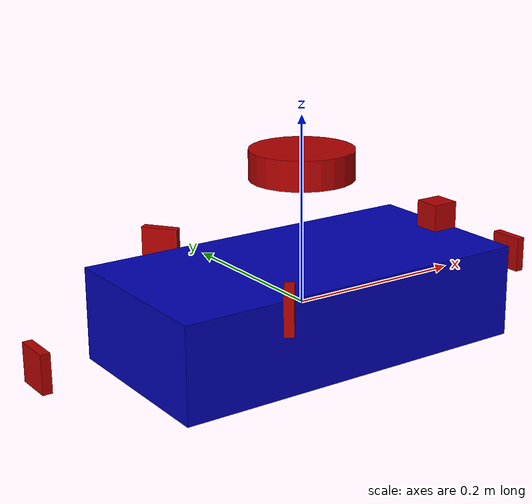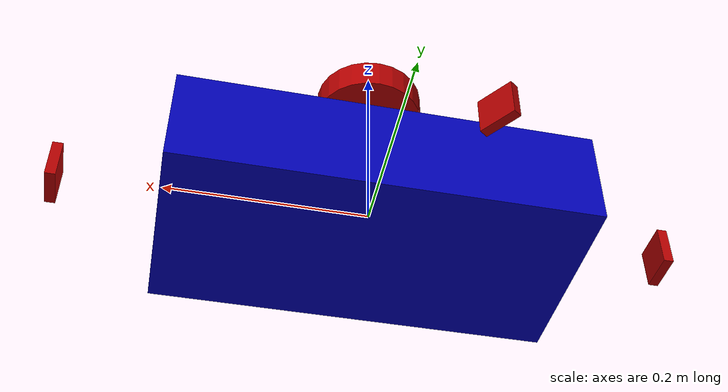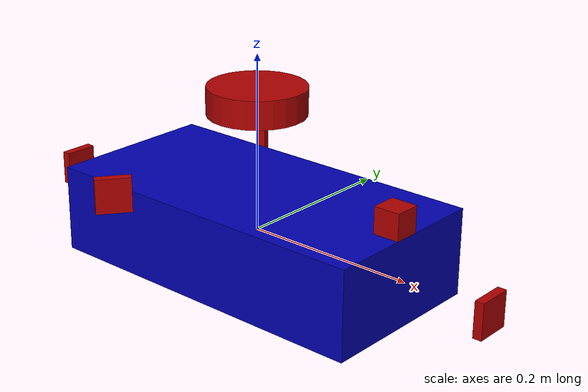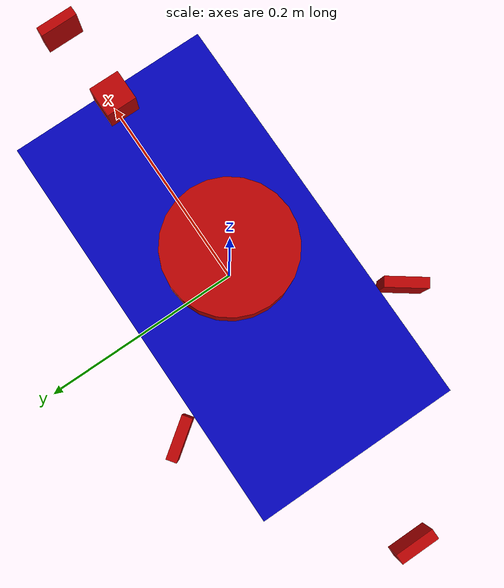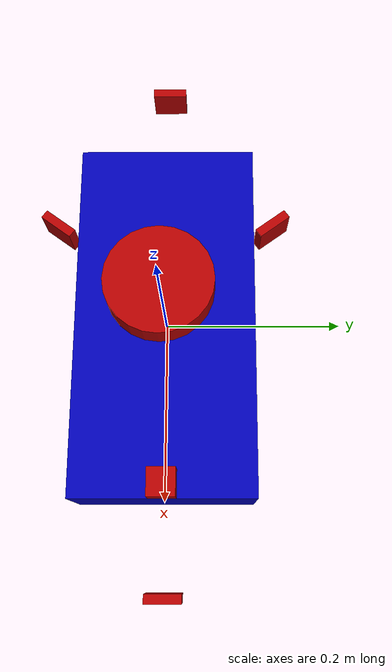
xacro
<?xml version="1.0"?>

<robot xmlns:xacro="http://ros.org/wiki/xacro">

  <xacro:property name="M_PI" value="3.14159" />
  <xacro:property name="lidar_height_from_pod" value="0.15" />
  <xacro:property name="pod_x" value="0.4"/>
  <xacro:property name="pod_y" value="0.2"/>
  <xacro:property name="pod_z" value="0.1"/>
  <xacro:include filename="lib.xacro" />
  <material name="blue">
    <color rgba="0 0 .7 1" />
  </material>
  <material name="red">
    <color rgba="0.7 0 0 1" />
  </material>

  <link name="pod">
    <visual>
      <origin xyz="0 0 0.0" rpy="0 0 0" />
      <geometry>
        <box size="${pod_x} ${pod_y} ${pod_z}" />
      </geometry>
      <material name="blue" />
    </visual>
    <collision>
      <geometry>
        <box size="${pod_x} ${pod_y} ${pod_z}" />
      </geometry>
    </collision>

    <inertial>
      <mass value="0.1" />
      <origin xyz="0 0 0" />
      <inertia ixx="0.001" ixy="0.0" ixz="0.0" iyy="0.001" iyz="0.0" izz="0.001" />
    </inertial>
  </link>

  <!--_LIDAR -->
  <link name="laser">
    <visual>
      <origin xyz="0 0 0.0" rpy="0 0 0" />
      <geometry>
        <cylinder length="0.0315" radius="0.055" />
      </geometry>
      <material name="red"/>
    </visual>

    <collision>
      <origin xyz="0.015 0 -0.0065" rpy="0 0 0" />
      <geometry>
        <cylinder length="0.0315" radius="0.055" />
      </geometry>
    </collision>

    <inertial>
      <mass value="0.114" />
      <origin xyz="0 0 0" />
      <inertia ixx="0.001" ixy="0.0" ixz="0.0" iyy="0.001" iyz="0.0" izz="0.001" />
    </inertial>
  </link>

  <gazebo reference="laser">
    <material>Gazebo/FlatBlack</material>
    <sensor type="ray" name="lidar_sensor">
      <pose>0 0 0 0 0 0</pose>
      <visualize>false</visualize>
      <update_rate>15</update_rate>
      <ray>
        <scan>
          <horizontal>
            <samples>360</samples>
            <resolution>1</resolution>
            <min_angle>0.0</min_angle>
            <max_angle>6.28319</max_angle>
          </horizontal>
        </scan>
        <range>
          <min>0.120</min>
          <max>10.0</max>
          <resolution>0.050</resolution>
        </range>
        <noise>
          <type>gaussian</type>
          <mean>0.0</mean>
          <stddev>0.01</stddev>
        </noise>
      </ray>
      <plugin name="scan" filename="libgazebo_ros_ray_sensor.so">
        <ros>
          <remapping>~/out:=scan</remapping>
        </ros>
        <output_type>sensor_msgs/LaserScan</output_type>
        <frame_name>laser</frame_name>
      </plugin>
    </sensor>
  </gazebo>
  <joint name="scan_joint" type="fixed">
    <parent link="pod" />
    <child link="laser" />
    <origin xyz="0 0 ${lidar_height_from_pod}" rpy="0 0 3.14" />
  </joint>
  <gazebo reference="scan_joint">
    <preserveFixedJoint>true</preserveFixedJoint>
  </gazebo>

  <!-- IMU -->
  <link name="imu">
    <visual>
      <origin xyz="0 0 0.0" rpy="0 0 0" />
      <geometry>
        <box  size="0.03 0.03 0.03" />
      </geometry>
      <material name="red"/>
    </visual>

    <collision>
      <origin xyz="0 0 0" rpy="0 0 0" />
      <geometry>
        <box length="0.03" width="0.03" height="0.03" />
      </geometry>
    </collision>

    <inertial>
      <mass value="0.114" />
      <origin xyz="0 0 0" />
      <inertia ixx="0.001" ixy="0.0" ixz="0.0" iyy="0.001" iyz="0.0" izz="0.001" />
    </inertial>
  </link>
  <gazebo reference="imu">
    <material>Gazebo/FlatBlack</material>

    <sensor name="my_imu" type="imu">
      <always_on>true</always_on>
      <!-- Publish at 30 hz -->
      <update_rate>30</update_rate>
      <plugin name="my_imu_plugin" filename="libgazebo_ros_imu_sensor.so">
        <ros>
          <!-- Will publish to /imu/data -->
          <namespace>/imu</namespace>
          <remapping>~/out:=data</remapping>
        </ros>
        <!-- frame_name ommited, will be "my_link" -->
      </plugin>
    </sensor>
  </gazebo>
  <joint name="imu_joint" type="fixed">
    <parent link="pod" />
    <child link="imu" />
    <origin xyz="${(pod_x-0.03)/2} 0 ${(pod_z+0.03)/2}" rpy="0 0 3.14" />
  </joint>
  <gazebo reference="imu_joint">
    <preserveFixedJoint>true</preserveFixedJoint>
  </gazebo>

  <xacro:cam suffix="front" xyz="0.3 0.0 0.0" rpy="0 0 ${0}" pod_link_name="pod"/>
  <xacro:cam suffix="right" xyz="-0.1 -0.12 0.05" rpy="0 0 ${-M_PI/5}" pod_link_name="pod"/>
  <xacro:cam suffix="left" xyz="-0.1 0.12 0.05" rpy="0 0 ${M_PI/5}" pod_link_name="pod"/>
  <xacro:cam suffix="rear" xyz="-0.3 0.0 0.0" rpy="0 0 ${M_PI}" pod_link_name="pod"/>

</robot>

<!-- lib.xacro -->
<robot xmlns:xacro="http://ros.org/wiki/xacro">

  <xacro:property name="M_PI" value="3.14159" />

  <xacro:macro name="cylinder_inertia" params="m r h">
    <inertial>
      <mass value="${m}" />
      <inertia ixx="${m*(3*r*r+h*h)/12}" ixy="0" ixz="0" iyy="${m*(3*r*r+h*h)/12}" iyz="0" izz="${m*r*r/2}" />
    </inertial>
  </xacro:macro>

  <xacro:macro name="box_inertia" params="m x y z">
    <inertial>
      <mass value="${m}" />
      <inertia ixx="${m*(y*y+z*z)/12}" ixy="0" ixz="0" iyy="${m*(x*x+z*z)/12}" iyz="0" izz="${m*(x*x+z*z)/12}" />
    </inertial>
  </xacro:macro>

  <xacro:macro name="sphere_inertia" params="m r">
    <inertial>
      <mass value="${m}" />
      <mass value="${m}" />
      <inertial ixx="${2*m*r*r/5}" ixy="0" ixz="0" iyy="${2*m*r*r/5}" iyz="0" izz="${2*m*r*r/5}" />
    </inertial>
  </xacro:macro>
  <xacro:macro name="zero_inertia">
    <xacro:sphere_inertia m="0.01" r="0.01" />
  </xacro:macro>

  <xacro:macro name="transmission" params="joint">
    <ros2_control name="GazeboSystem" type="system">
      <hardware>
        <plugin>gazebo_ros2_control/GazeboSystem</plugin>
      </hardware>
      <joint name="${joint}">
        <command_interface name="effort">
          <param name="min">-1000</param>
          <param name="max">1000</param>
        </command_interface>
        <state_interface name="position">
          <param name="initial_value">0.0</param>
        </state_interface>
        <state_interface name="velocity"/>
        <state_interface name="effort"/>
      </joint>
    </ros2_control>
  </xacro:macro>

  <xacro:macro name="cam" params="suffix xyz rpy pod_link_name">
    <link name="camera_${suffix}">
      <visual>
        <origin xyz="0 0 0.0" rpy="0 0 0" />
        <geometry>
          <box size="0.01 0.04 0.04" />
        </geometry>
        <material name="red" />
      </visual>
      <collision>
        <geometry>
          <box size="0.01 0.04 0.04" />
        </geometry>
      </collision>

      <inertial>
        <mass value="0.01" />
        <origin xyz="0 0 0" />
        <inertia ixx="0.0001" ixy="0.0" ixz="0.0" iyy="0.0001" iyz="0.0" izz="0.0001" />
      </inertial>
    </link>

    <gazebo reference="camera_${suffix}">
      <material>Gazebo/Red</material>
      <sensor name="camera_${suffix}_sensor" type="camera">
        <camera>
          <horizontal_fov>1.5</horizontal_fov>
          <image>
            <width>640</width>
            <height>480</height>
          </image>
          <clip>
            <near>0.1</near>
            <far>1000</far>
          </clip>
        </camera>
        <always_on>1</always_on>
        <update_rate>10</update_rate>
        <visualize>false</visualize>
        <camera name="camera_${suffix}">
          <distortion>
            <k1>0.0</k1>
            <k2>0.0</k2>
            <k3>0.0</k3>
            <p1>0.0</p1>
            <p2>0.0</p2>
            <center> 0.5 0.5 </center>
          </distortion>
        </camera>

        <plugin name="camera_controller" filename="libgazebo_ros_camera.so">

          <ros>
            <namespace></namespace>
          </ros>
          <hack_baseline>0.07</hack_baseline>
          <frame_name>camera_${suffix}</frame_name>
        </plugin>
      </sensor>
    </gazebo>

    <joint name="cam_joint_${suffix}" type="fixed">
      <parent link="${pod_link_name}" />
      <child link="camera_${suffix}" />
      <origin xyz="${xyz}" rpy="${rpy}" />
    </joint>

    <gazebo reference="cam_joint_${suffix}">
        <preserveFixedJoint>true</preserveFixedJoint>
    </gazebo>
  </xacro:macro>

</robot>
